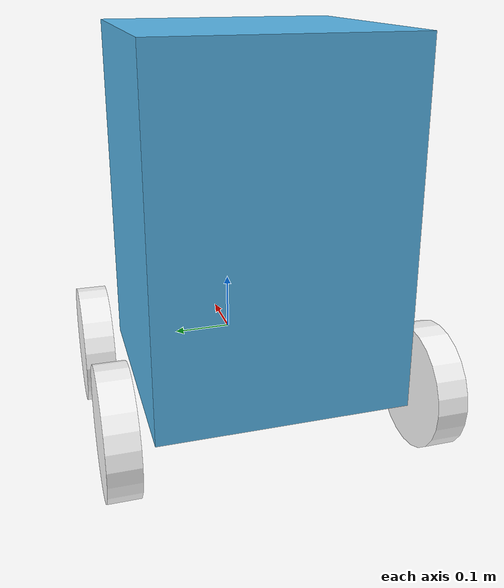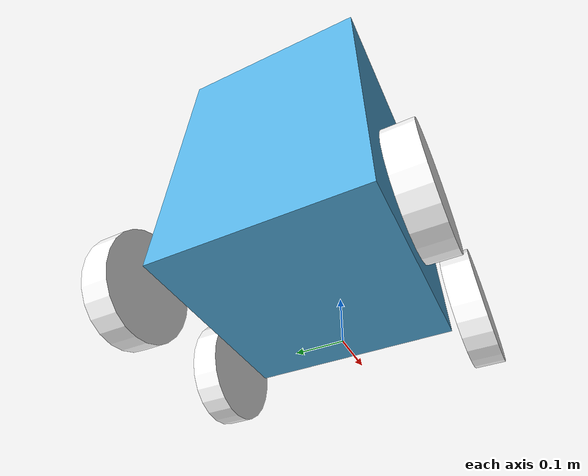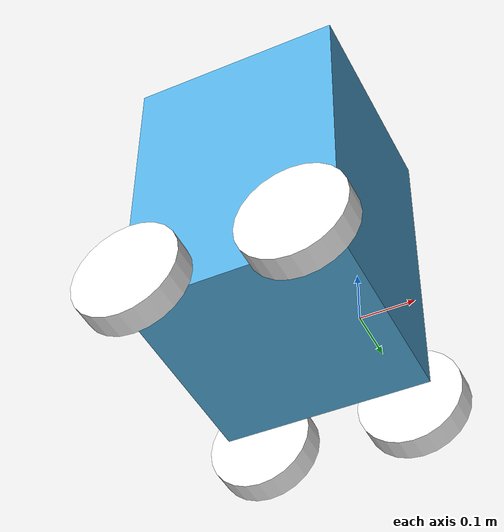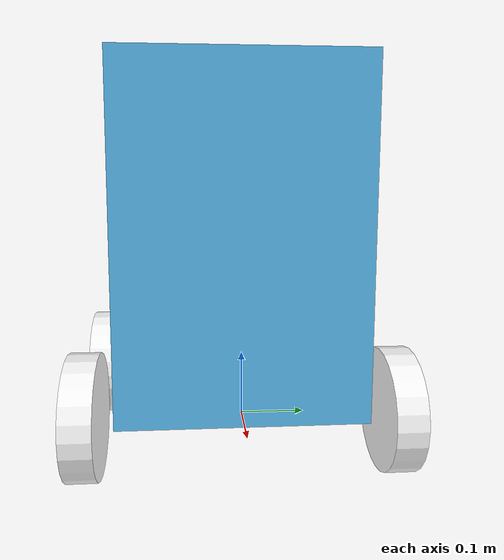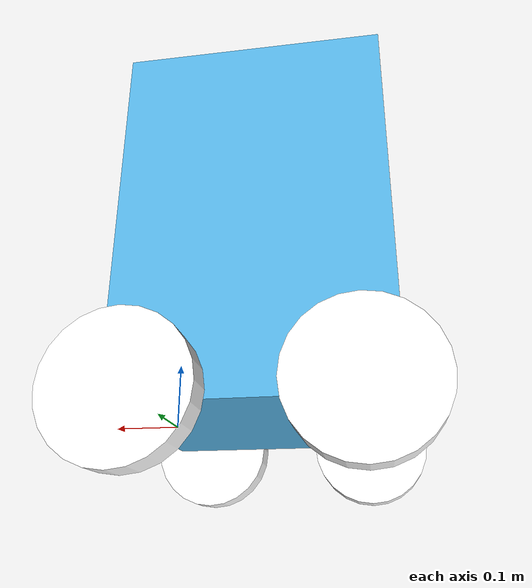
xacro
<?xml version="1.0"?>
<robot name="firebot" xmlns:xacro="http://ros.org/wiki/xacro">
    <xacro:include filename="inertial_macros.xacro"/>
    <material name="orange">
        <color rgba="1 0.64 0 1" />
    </material>

    <material name="white">
        <color rgba="1 1 1 1" />
    </material>

    <link name="base_link">

    </link>

    <joint name="chassis_joint" type="fixed">
        <parent link="base_link"/>
        <child link="chassis"/>
        <origin xyz = "-0.35 0 0"/>
    </joint>
    <link name="chassis">
        <visual>
            <geometry>
                <box size= "0.4 0.4 0.57"/>
                <material name="orange"/>
            </geometry>
            <origin xyz="0.2 0 0.280"/>
        </visual>
        <collision>
            <geometry>
                <box size= "0.4 0.4 0.57"/>
            </geometry>
            <origin xyz="0.2 0 0.280"/>
        </collision>
        <xacro:inertial_box mass="0.5" x="0.4" y="0.4" z="0.57">
            <origin xyz="0.2 0 0.280" rpy="0 0 0"/>
        </xacro:inertial_box>
    </link>

    <joint name="front_left_wheel_joint" type="continuous">
        <parent link="base_link"/>
        <child link="front_left_wheel"/>
        <origin xyz="0 0.25 0" rpy="-${pi/2} 0 0" />
        <axis xyz="0 0 1" />
    </joint>
    <link name="front_left_wheel">
        <visual>
            <geometry>
                <cylinder radius="0.10115" length="0.05" />
            </geometry>
            <material name="white"/>
        </visual>
        <collision>
            <geometry>
                <cylinder radius="0.10115" length="0.05" />
            </geometry>
        </collision>
        <xacro:inertial_cylinder mass="0.1" radius="0.10115" length="0.05" >
            <origin xyz="0 0 0" rpy="0 0 0" />
        </xacro:inertial_cylinder>
    </link>

    <joint name="front_right_wheel_joint" type="continuous">
        <parent link="base_link"/>
        <child link="front_right_wheel"/>
        <origin xyz="0 -0.25 0" rpy="${pi/2} 0 0" />
        <axis xyz="0 0 -1" />
    </joint>
    <link name="front_right_wheel">
        <visual>
            <geometry>
                <cylinder radius="0.10115" length="0.05" />
            </geometry>
            <material name="white"/>
        </visual>
        <collision>
            <geometry>
                <cylinder radius="0.10115" length="0.05" />
            </geometry>
        </collision>
        <xacro:inertial_cylinder mass="0.1" radius="0.10115" length="0.05" >
            <origin xyz="0 0 0" rpy="0 0 0" />
        </xacro:inertial_cylinder>
    </link>

    <joint name="back_left_wheel_joint" type="fixed">
        <parent link="base_link"/>
        <child link="back_left_wheel"/>
        <origin xyz="-0.30 0.25 0" rpy="-${pi/2} 0 0" />
    </joint>
    <link name="back_left_wheel">
        <visual>
            <geometry>
                <cylinder radius="0.10115" length="0.05" />
            </geometry>
            <material name="white"/>
        </visual>
        <collision>
            <geometry>
                <cylinder radius="0.10115" length="0.05" />
            </geometry>
        </collision>
        <xacro:inertial_cylinder mass="0.1" radius="0.10115" length="0.05" >
            <origin xyz="0 0 0" rpy="0 0 0" />
        </xacro:inertial_cylinder>
    </link>

    <joint name="back_right_wheel_joint" type="fixed">
        <parent link="base_link"/>
        <child link="back_right_wheel"/>
        <origin xyz="-0.30 -0.25 0" rpy="${pi/2} 0 0" />
    </joint>
    <link name="back_right_wheel">
        <visual>
            <geometry>
                <cylinder radius="0.10115" length="0.05" />
            </geometry>
            <material name="white"/>
        </visual>
        <collision>
            <geometry>
                <cylinder radius="0.10115" length="0.05" />
            </geometry>
        </collision>
        <xacro:inertial_cylinder mass="0.1" radius="0.10115" length="0.05" >
            <origin xyz="0 0 0" rpy="0 0 0" />
        </xacro:inertial_cylinder>
    </link>
     <gazebo reference="back_left_wheel">
        <mu1 value="0.001"/>
        <mu2 value="0.001"/>
    </gazebo>
    <gazebo reference="back_right_wheel">
        <mu1 value="0.001"/>
        <mu2 value="0.001"/>
    </gazebo>
</robot>
